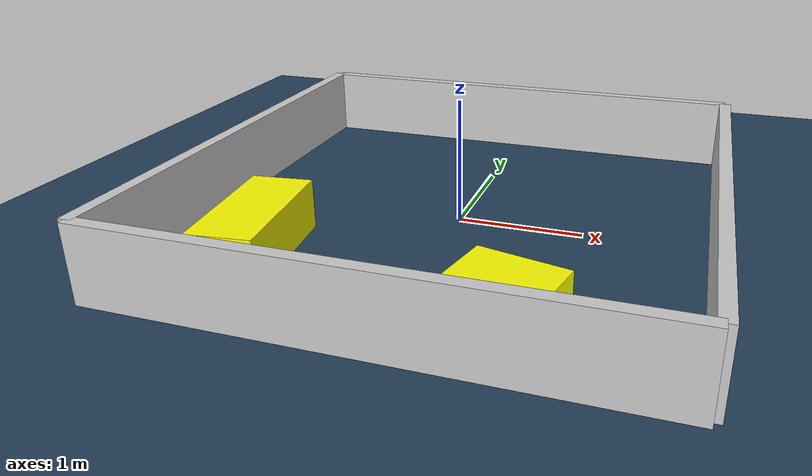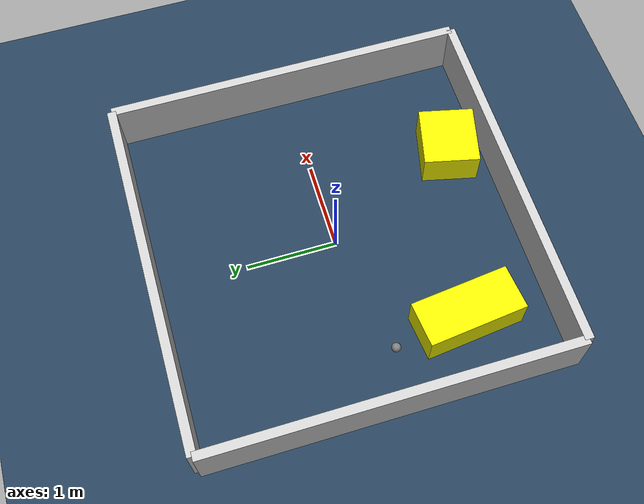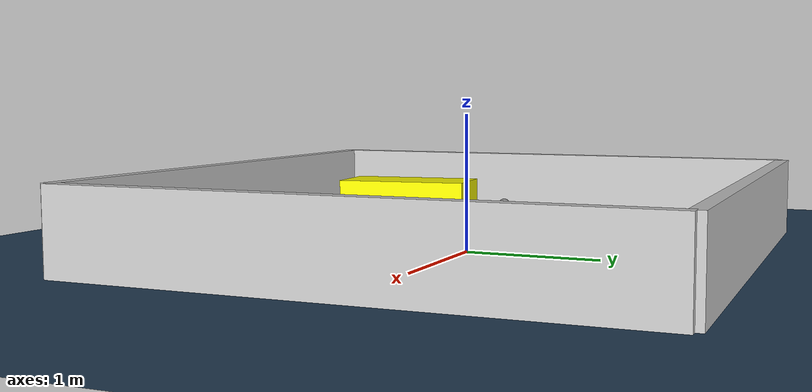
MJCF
<?xml version="1.0" ?>
<mujoco model="generated_environment">
  <option timestep="0.01" integrator="RK4" cone="elliptic"/>
  <default>
    <geom density="1"/>
  </default>
  <asset>
    <texture builtin="gradient" height="3072" rgb1="0.3 0.5 0.7" rgb2="0 0 0" type="skybox" width="512"/>
    <texture builtin="checker" height="300" mark="edge" markrgb="0.8 0.8 0.8" name="groundplane" rgb1="0.2 0.3 0.4" rgb2="0.1 0.2 0.3" type="2d" width="300"/>
    <material name="groundplane" reflectance="0.2" texrepeat="5 5" texture="groundplane" texuniform="true"/>
    <material name="robot" rgba="0.0 1.0 0.0 1"/>
  </asset>
  <worldbody>
    <light dir="0 0 -1" directional="true" pos="0 0 1.5"/>
    <geom condim="4" friction="1.0 0.005 0.001" material="groundplane" name="floor" size="0 0 0.05" type="plane"/>
    <body name="walls">
      <geom name="wall_1" condim="4" pos="-2.0 0.0 0.3" rgba="0.800000011920929 0.800000011920929 0.800000011920929 1.0" size="0.05 2.0 0.3" type="box"/>
      <geom name="wall_2" condim="4" pos="2.0 0.0 0.3" rgba="0.800000011920929 0.800000011920929 0.800000011920929 1.0" size="0.05 2.0 0.3" type="box"/>
      <geom name="wall_3" condim="4" pos="0.0 -2.0 0.3" rgba="0.800000011920929 0.800000011920929 0.800000011920929 1.0" size="2.0 0.05 0.3" type="box"/>
      <geom name="wall_4" condim="4" pos="0.0 2.0 0.3" rgba="0.800000011920929 0.800000011920929 0.800000011920929 1.0" size="2.0 0.05 0.3" type="box"/>
    </body>
    <body name="robot">
      <joint name="joint_x" type="slide" pos="0 0 0" axis="1 0 0"/>
      <joint name="joint_y" type="slide" pos="0 0 0" axis="0 1 0"/>
      <geom name="robot" type="sphere" pos="-1.3998893491483984 -0.21958008684597763 0.2" size="0.05" mass="5." friction="1.0 0.005 0.0001" condim="4"/>
      <site name="sensor_ball"/>
    </body>
    <body name="obstacle_1_movable">
      <geom name="obstacle_1_movable" condim="4" pos="-1.2511702948639978 -1.0455789484342286 0.2" euler="0 0 276.29400370581675" friction="1.0 0.005 0.001" rgba="1 1 0 1" size="0.5446628514244778 0.2465733085917559 0.2" type="box" mass="0.1"/>
      <joint type="free"/>
    </body>
    <body name="obstacle_2_movable">
      <geom name="obstacle_2_movable" condim="4" pos="0.7461920123244923 -1.5506884784306683 0.2" euler="0 0 256.89589782737204" friction="1.0 0.005 0.001" rgba="1 1 0 1" size="0.3094071572415822 0.3372471359971362 0.2" type="box" mass="0.1"/>
      <joint type="free"/>
    </body>
  </worldbody>
  <actuator>
    <motor name="actuator_x" joint="joint_x" gear="1" ctrlrange="-1 1"/>
    <motor name="actuator_y" joint="joint_y" gear="1" ctrlrange="-1 1"/>
  </actuator>
</mujoco>
